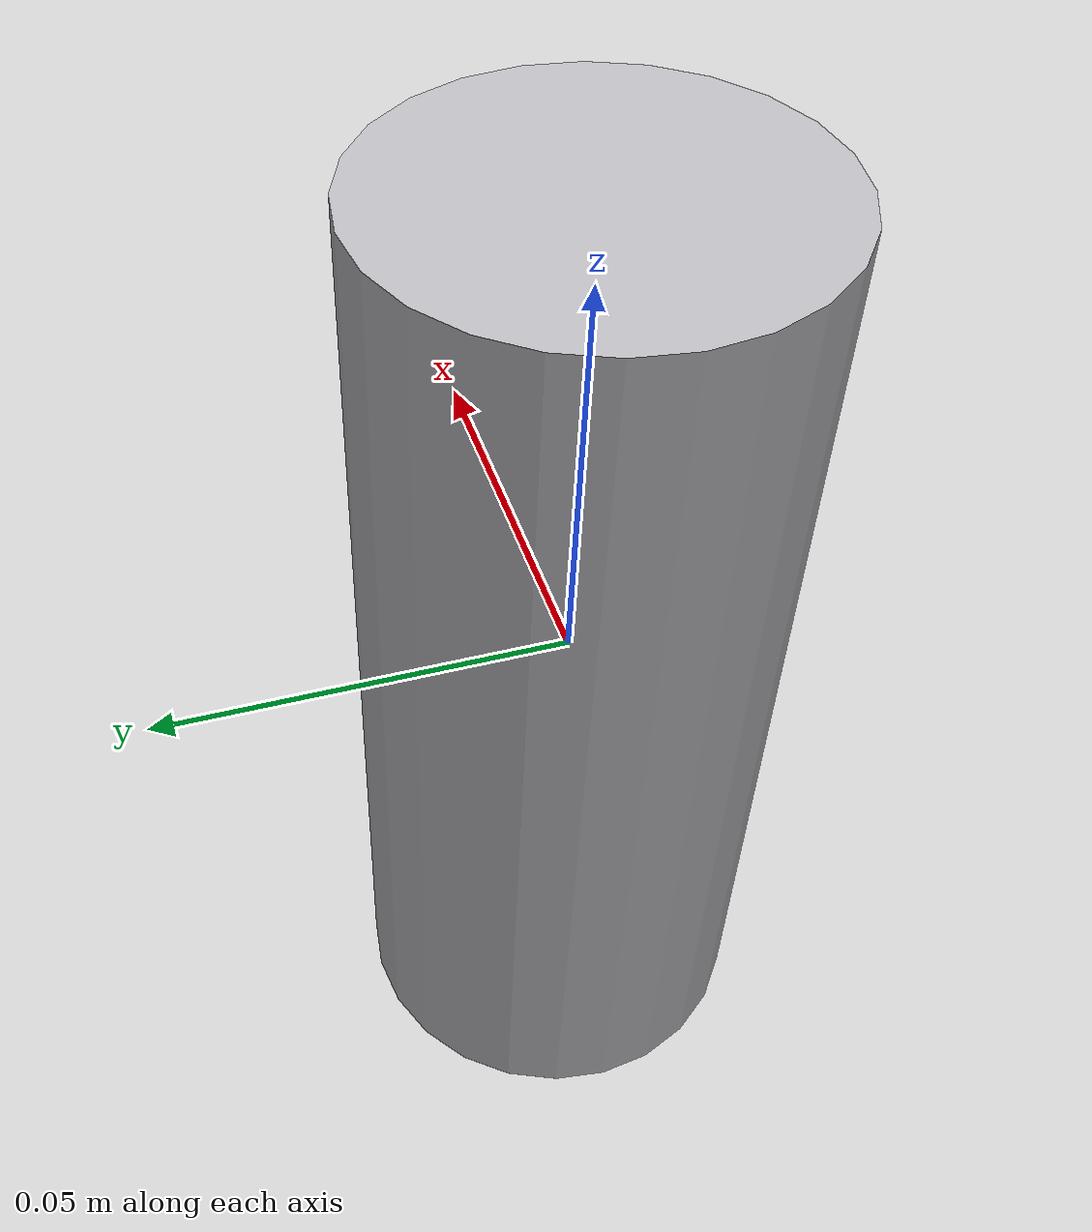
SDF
<?xml version="1.0"?>
<sdf version="1.9">
  <model name="workpiece">
    <link name="part">
      <inertial>
        <mass>0.6</mass>
        <inertia>
          <ixx>0.002</ixx>
          <iyy>0.002</iyy>
          <izz>0.001</izz>
        </inertia>
      </inertial>
      <collision name="collision">
        <geometry>
          <cylinder>
            <radius>0.025</radius>
            <length>0.12</length>
          </cylinder>
        </geometry>
        <surface>
          <friction>
            <!-- Match the 2.0 rubber-pad material used by the gripper so
                 contact behaviour does not depend on which body supplies the
                 friction coefficient for the pair. -->
            <ode>
              <mu>2.0</mu>
              <mu2>2.0</mu2>
            </ode>
            <bullet>
              <friction>2.0</friction>
              <friction2>2.0</friction2>
            </bullet>
          </friction>
          <contact>
            <ode>
              <kp>200000</kp>
              <kd>10</kd>
              <max_vel>0.05</max_vel>
              <min_depth>0.001</min_depth>
            </ode>
          </contact>
        </surface>
      </collision>
      <visual name="visual">
        <geometry>
          <cylinder>
            <radius>0.025</radius>
            <length>0.12</length>
          </cylinder>
        </geometry>
        <material>
          <diffuse>0.72 0.72 0.74 1</diffuse>
        </material>
      </visual>
      <!-- Simulation truth reports every collision involving this workpiece.
           Verification still requires both gripper sides; table contact alone
           can never satisfy the grasp condition. -->
      <sensor name="physical_contact" type="contact">
        <always_on>true</always_on>
        <update_rate>100</update_rate>
        <contact>
          <collision>collision</collision>
          <topic>/factory/workpieces/contacts</topic>
        </contact>
      </sensor>
    </link>
    <plugin filename="gz-sim-pose-publisher-system"
            name="gz::sim::systems::PosePublisher">
      <publish_model_pose>true</publish_model_pose>
      <publish_link_pose>true</publish_link_pose>
      <publish_sensor_pose>false</publish_sensor_pose>
      <publish_collision_pose>false</publish_collision_pose>
      <publish_visual_pose>false</publish_visual_pose>
      <use_pose_vector_msg>true</use_pose_vector_msg>
      <update_frequency>20</update_frequency>
    </plugin>
  </model>
</sdf>
